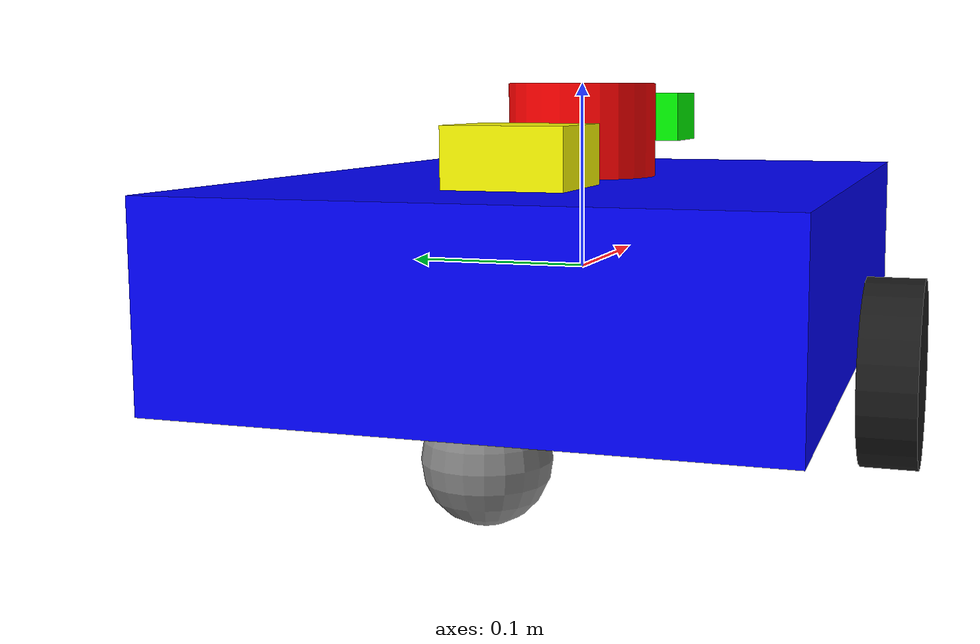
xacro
<?xml version="1.0"?>
<robot name="simple_mobile_robot"
       xmlns:xacro="http://www.ros.org/wiki/xacro">

 <xacro:property name="base_length" value="0.4"/>
 <xacro:property name="base_width" value="0.3"/>
 <xacro:property name="base_height" value="0.1"/>

 <xacro:property name="wheel_radius" value="0.05"/>
 <xacro:property name="wheel_width" value="0.03"/>

 <xacro:property name="lidar_radius" value="0.04"/>
 <xacro:property name="lidar_height" value="0.05"/>

 <xacro:property name="camera_size_x" value="0.05"/>
 <xacro:property name="camera_size_y" value="0.05"/>
 <xacro:property name="camera_size_z" value="0.03"/>

 <xacro:property name="imu_size_x" value="0.06"/>
 <xacro:property name="imu_size_y" value="0.06"/>
 <xacro:property name="imu_size_z" value="0.04"/>

 <xacro:property name="caster_radius" value="0.03"/>

 <link name="base_link">
  <visual>
   <geometry>
    <box size="${base_length} ${base_width} ${base_height}"/>
   </geometry>

   <material name="blue">
     <color rgba="0 0 1 1"/>

   </material>
  </visual>

  <inertial>

   <origin xyz="0 0 0"/>

   <mass value="5.0"/>

   <inertia
      ixx="0.1"
      ixy="0"
      ixz="0"
      iyy="0.1"
      iyz="0"
      izz="0.1"/>

  </inertial>
   <collision>
    <geometry>
     <box size="${base_length} ${base_width} ${base_height}"/>
    </geometry>
  </collision>
 </link>

 <link name="left_wheel">
  <visual>
   <geometry>
    <cylinder radius="${wheel_radius}" length="${wheel_width}"/>
   </geometry>

   <material name="black">
    <color rgba="0.1 0.1 0.1 1"/>
   </material>
  </visual>

  <inertial>

   <origin xyz="0 0 0"/>

   <mass value="0.5"/>

   <inertia
      ixx="0.001"
      ixy="0"
      ixz="0"
      iyy="0.001"
      iyz="0"
      izz="0.001"/>

  </inertial>
  <collision>
   <geometry>
    <cylinder radius="${wheel_radius}" length="${wheel_width}"/>
   </geometry>
  </collision>

 </link>

 <joint name="left_wheel_joint" type="continuous">
   <parent link="base_link"/>
   <child link="left_wheel"/>

   <origin xyz="0 0.17 -0.05" rpy="1.5708 0 0"/>
   <axis xyz="0 1 0"/>
 </joint>

 <link name ="right_wheel">
  <visual>
   <geometry>
    <cylinder radius="${wheel_radius}" length="${wheel_width}"/>
   </geometry>
   <material name="black">
    <color rgba="0.1 0.1 0.1 1"/>
   </material>
  </visual>

  <inertial>

   <origin xyz="0 0 0"/>

   <mass value="0.5"/>

   <inertia
      ixx="0.001"
      ixy="0"
      ixz="0"
      iyy="0.001"
      iyz="0"
      izz="0.001"/>

  </inertial>
  <collision>
   <geometry>
    <cylinder radius="${wheel_radius}" length="${wheel_width}"/>
   </geometry>
  </collision>
 </link>

 <joint name="right_wheel_joint" type="continuous">
   <parent link="base_link"/>
   <child link ="right_wheel"/>
   <origin xyz="0 -0.17 -0.05" rpy="1.5708 0 0"/>
   <axis xyz="0 1 0"/>
 </joint>

 <link name="lidar_link">
  <visual>
   <geometry>
    <cylinder radius="${lidar_radius}" length="${lidar_height}"/>
   </geometry>

   <material name="red">
    <color rgba="1 0 0 1"/>
   </material>
  </visual>

  <inertial>
   <mass value="0.2"/>
   <origin xyz="0 0 0"/>
   <inertia
      ixx="0.0001"
      ixy="0"
      ixz="0"
      iyy="0.0001"
      iyz="0"
      izz="0.0001"/>
  </inertial>
  <collision>
   <geometry>
    <cylinder radius="${lidar_radius}" length="${lidar_height}"/>
   </geometry>
  </collision>

 </link>

 <joint name="lidar_joint" type="fixed">
  <parent link="base_link"/>
  <child link="lidar_link"/>
  <origin xyz="0 0 0.075" rpy="0 0 0"/>
 </joint>

 <link name="depth_camera_link">
  <visual>
   <geometry>
    <box size="${camera_size_x} ${camera_size_y} ${camera_size_z}"/>
   </geometry>

   <material name="green">
    <color rgba="0 1 0 1"/>
   </material>
  </visual>

  <inertial>
   <mass value="0.1"/>
   <origin xyz="0 0 0"/>

   <inertia
      ixx="0.0001"
      ixy="0"
      ixz="0"
      iyy="0.0001"
      iyz="0"
      izz="0.0001"/>
  </inertial>

  <collision>
   <geometry>
    <box size="${camera_size_x} ${camera_size_y} ${camera_size_z}"/>
   </geometry>
  </collision>
 </link>

 <joint name="depth_camera_joint" type="fixed">
  <parent link="base_link"/>
  <child link="depth_camera_link"/>
  <origin xyz="0.15 0 0.08" rpy="0 0 0"/>
 </joint>

 <link name="imu_link">

  <visual>
    <geometry>
      <box size="${imu_size_x} ${imu_size_y} ${imu_size_z}"/>
    </geometry>

    <material name="yellow">
      <color rgba="1 1 0 1"/>
    </material>
  </visual>

  <collision>
    <geometry>
      <box size="${imu_size_x} ${imu_size_y} ${imu_size_z}"/>
    </geometry>
  </collision>

  <inertial>

    <mass value="0.1"/>

    <origin xyz="0 0 0"/>

    <inertia
      ixx="0.000166667"
      ixy="0"
      ixz="0"
      iyy="0.000166667"
      iyz="0"
      izz="0.000166667"/>

  </inertial>

 </link>

 <joint name="imu_joint" type="fixed">
  <parent link="base_link"/>
  <child link="imu_link"/>
  <origin xyz="-0.10 0 0.06" rpy="0 0 0"/>
 </joint>

 <link name="caster_wheel">
  <visual>
   <geometry>
    <sphere radius="${caster_radius}"/>
   </geometry>

   <material name="gray">
    <color rgba="0.5 0.5 0.5 1"/>
   </material>
  </visual>

  <inertial>
   <mass value="0.2"/>
   <origin xyz="0 0 0"/>

   <inertia
      ixx="0.0001"
      ixy="0"
      ixz="0"
      iyy="0.0001"
      iyz="0"
      izz="0.0001"/>
  </inertial>
  <collision>
   <geometry>
    <sphere radius="${caster_radius}"/>
   </geometry>
  </collision>
 </link>

 <joint name="caster_wheel_joint" type="fixed">
  <parent link="base_link"/>
  <child link="caster_wheel"/>
  <origin xyz="-0.15 0 -0.07" rpy="0 0 0"/>
 </joint>

 <!--adding ros2 control -->
 <ros2_control name="GazeboSimSystem" type="system">
  <hardware>
   <plugin>gz_ros2_control/GazeboSimSystem</plugin>

  <!--A plugin is like a software module that adds functionality.
  #Gazebo doesn't automatically understand ROS motor commands.
  #The plugin acts as a translator.
  #ROS -> plugin -> Gazebo -->

  </hardware>

  <joint name="left_wheel_joint">
   <command_interface name="velocity">
    <param name="min">-1</param>
    <param name="max">1</param>
   </command_interface>  <!--command  tell ros to control joint by giving velocity speed-->

   <state_interface name="position"/>  <!--feedback , it tell ros that u can read current position of joint-->
   <state_interface name="velocity"/>  <!--feedback = reading the current wheel speed-->
  </joint>

  <joint name="right_wheel_joint">
   <command_interface name="velocity">
    <param name="min">-1</param>
    <param name="max">1</param>
   </command_interface>
   <state_interface name="position"/>
   <state_interface name="velocity"/>
  </joint>

 </ros2_control>

 <!--adding the Gazebo plugin -->

 <gazebo>

  <plugin
      filename="gz_ros2_control-system"
      name="gz_ros2_control::GazeboSimROS2ControlPlugin">

    <ros>
      <namespace></namespace>
    </ros>

    <parameters>
      /media/zbook/Data/ros2_ws/install/simple_mobile_robot/share/simple_mobile_robot/config/controllers.yaml
    </parameters>

   </plugin>

 </gazebo>

<gazebo reference="lidar_link">

  <sensor name="lidar_sensor" type="gpu_lidar">

    <always_on>true</always_on>

    <update_rate>10</update_rate>

    <visualize>true</visualize>

    <topic>scan</topic>

    <gz_frame_id>lidar_link</gz_frame_id>

    <lidar>

      <scan>

        <horizontal>

          <samples>720</samples>

          <resolution>1</resolution>

          <min_angle>-3.14159</min_angle>

          <max_angle>3.14159</max_angle>

        </horizontal>

      </scan>

      <range>

        <min>0.10</min>

        <max>10.0</max>

        <resolution>0.01</resolution>

      </range>

    </lidar>

  </sensor>

</gazebo>

<gazebo reference="base_link">

  <sensor name="imu" type="imu">

    <always_on>true</always_on>

    <update_rate>100</update_rate>

    <visualize>true</visualize>

    <topic>/imu</topic>

    <enable_metrics>true</enable_metrics>

  </sensor>

</gazebo>

<gazebo reference="depth_camera_link">

  <sensor name="camera" type="depth_camera">

    <always_on>true</always_on>
    <update_rate>30</update_rate>

    <visualize>true</visualize>

    <topic>camera</topic>

    <gz_frame_id>depth_camera_link</gz_frame_id>
    <optical_frame_id>depth_camera_link</optical_frame_id>
    <camera>

      <horizontal_fov>1.047</horizontal_fov>

      <image>
        <width>640</width>
        <height>480</height>
        <format>R8G8B8</format>
      </image>

      <clip>
        <near>0.1</near>
        <far>10.0</far>
      </clip>

    </camera>

  </sensor>

</gazebo>

</robot>
